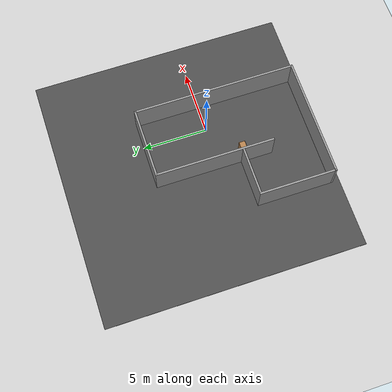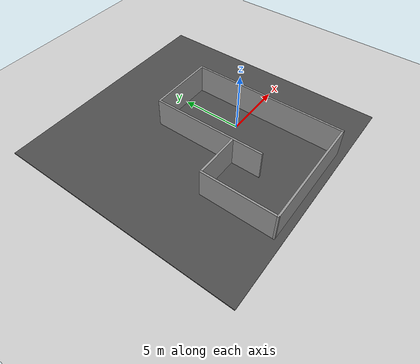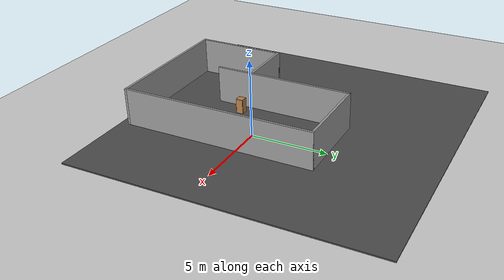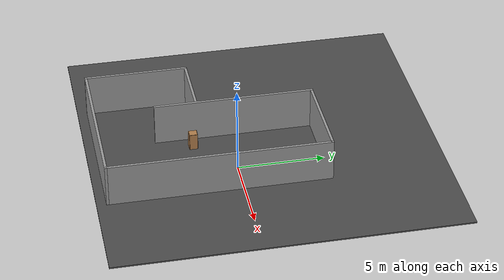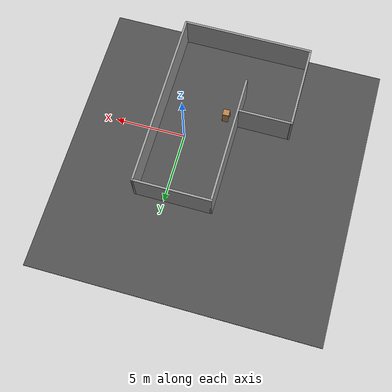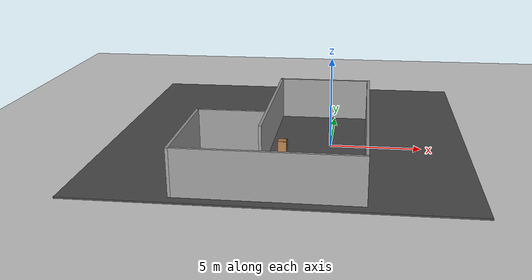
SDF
<sdf version="1.6">
 <world name="default">
  <light name="sun" type="directional">
   <pose>0 0 15 0 -0 0</pose>
   <diffuse>0.8 0.8 0.8 1</diffuse>
   <specular>0.2 0.2 0.2 1</specular>
   <attenuation>
    <range>1000</range>
    <constant>0.9</constant>
    <linear>0.01</linear>
    <quadratic>0.001</quadratic>
   </attenuation>
   <direction>-0.5 0.1 -0.9</direction>
  </light>
  <model name="ground_plane">
   <static>1</static>
   <link name="link">
    <collision name="collision">
     <geometry><plane><normal>0 0 1</normal><size>100 100</size></plane></geometry>
     <surface><friction><ode><mu>100</mu><mu2>50</mu2></ode></friction></surface>
    </collision>
    <visual name="visual">
     <transparency>1</transparency>
     <cast_shadows>0</cast_shadows>
     <geometry><plane><normal>0 0 1</normal><size>100 100</size></plane></geometry>
     <material>
      <script><uri>file://media/materials/scripts/gazebo.material</uri><name>Gazebo/Grey</name></script>
     </material>
    </visual>
   </link>
  </model>
  <gravity>0 0 -9.8</gravity>
  <magnetic_field>6e-06 2.3e-05 -4.2e-05</magnetic_field>
  <atmosphere type="adiabatic"/>
  <physics name="default_physics" default="0" type="ode">
   <max_step_size>0.001</max_step_size>
   <real_time_factor>1</real_time_factor>
   <real_time_update_rate>1000</real_time_update_rate>
  </physics>
  <scene><ambient>0.4 0.4 0.4 1</ambient><background>0.7 0.7 0.7 1</background><shadows>1</shadows></scene>
  <spherical_coordinates>
   <surface_model>EARTH_WGS84</surface_model>
   <latitude_deg>0</latitude_deg>
   <longitude_deg>0</longitude_deg>
   <elevation>0</elevation>
   <heading_deg>0</heading_deg>
  </spherical_coordinates>
  <model name="asphalt_plane">
   <static>1</static>
   <link name="link">
    <collision name="collision"><geometry><box><size>20 20 0.1</size></box></geometry></collision>
    <visual name="visual">
     <cast_shadows>0</cast_shadows>
     <geometry><box><size>20 20 0.1</size></box></geometry>
     <material>
      <script>
       <uri>model://asphalt_plane/materials/scripts</uri>
       <uri>model://asphalt_plane/materials/textures</uri>
       <name>vrc/asphalt</name>
      </script>
     </material>
    </visual>
   </link>
   <pose>-2.45537 1.74261 0 0 -0 0</pose>
  </model>
  <model name="my_world_j">
   <pose>-2.53 -1.33 0 0 -0 0</pose>
   <link name="Wall_0">
    <collision name="Wall_0_Collision">
     <geometry><box><size>9.25 0.15 2.5</size></box></geometry>
     <pose>0 0 1.25 0 -0 0</pose>
    </collision>
    <visual name="Wall_0_Visual">
     <pose>0 0 1.25 0 -0 0</pose>
     <geometry><box><size>9.25 0.15 2.5</size></box></geometry>
     <material>
      <script><uri>file://media/materials/scripts/gazebo.material</uri><name>Gazebo/Grey</name></script>
      <ambient>1 1 1 1</ambient>
     </material>
     <meta><layer>0</layer></meta>
    </visual>
    <pose>-0.8 1.75 0 0 -0 1.5708</pose>
   </link>
   <link name="Wall_1">
    <collision name="Wall_1_Collision">
     <geometry><box><size>5.5 0.15 2.5</size></box></geometry>
     <pose>0 0 1.25 0 -0 0</pose>
    </collision>
    <visual name="Wall_1_Visual">
     <pose>0 0 1.25 0 -0 0</pose>
     <geometry><box><size>5.5 0.15 2.5</size></box></geometry>
     <material>
      <script><uri>file://media/materials/scripts/gazebo.material</uri><name>Gazebo/Grey</name></script>
      <ambient>1 1 1 1</ambient>
     </material>
     <meta><layer>0</layer></meta>
    </visual>
    <pose>1.875 6.3 0 0 -0 0</pose>
   </link>
   <link name="Wall_2">
    <collision name="Wall_2_Collision">
     <geometry><box><size>12.75 0.15 2.5</size></box></geometry>
     <pose>0 0 1.25 0 -0 0</pose>
    </collision>
    <visual name="Wall_2_Visual">
     <pose>0 0 1.25 0 -0 0</pose>
     <geometry><box><size>12.75 0.15 2.5</size></box></geometry>
     <material>
      <script><uri>file://media/materials/scripts/gazebo.material</uri><name>Gazebo/Grey</name></script>
      <ambient>1 1 1 1</ambient>
     </material>
     <meta><layer>0</layer></meta>
    </visual>
    <pose>4.55 0 0 0 0 -1.5708</pose>
   </link>
   <link name="Wall_3">
    <collision name="Wall_3_Collision">
     <geometry><box><size>9.25 0.15 2.5</size></box></geometry>
     <pose>0 0 1.25 0 -0 0</pose>
    </collision>
    <visual name="Wall_3_Visual">
     <pose>0 0 1.25 0 -0 0</pose>
     <geometry><box><size>9.25 0.15 2.5</size></box></geometry>
     <material>
      <script><uri>file://media/materials/scripts/gazebo.material</uri><name>Gazebo/Grey</name></script>
      <ambient>1 1 1 1</ambient>
     </material>
     <meta><layer>0</layer></meta>
    </visual>
    <pose>0 -6.3 0 0 -0 3.14159</pose>
   </link>
   <link name="Wall_4">
    <collision name="Wall_4_Collision">
     <geometry><box><size>6 0.15 2.5</size></box></geometry>
     <pose>0 0 1.25 0 -0 0</pose>
    </collision>
    <visual name="Wall_4_Visual">
     <pose>0 0 1.25 0 -0 0</pose>
     <geometry><box><size>6 0.15 2.5</size></box></geometry>
     <material>
      <script><uri>file://media/materials/scripts/gazebo.material</uri><name>Gazebo/Grey</name></script>
      <ambient>1 1 1 1</ambient>
     </material>
     <meta><layer>0</layer></meta>
    </visual>
    <pose>-4.55 -3.375 0 0 -0 1.5708</pose>
   </link>
   <link name="Wall_5">
    <collision name="Wall_5_Collision">
     <geometry><box><size>3.75 0.15 2.5</size></box></geometry>
     <pose>0 0 1.25 0 -0 0</pose>
    </collision>
    <visual name="Wall_5_Visual">
     <pose>0 0 1.25 0 -0 0</pose>
     <geometry><box><size>3.75 0.15 2.5</size></box></geometry>
     <material>
      <script><uri>file://media/materials/scripts/gazebo.material</uri><name>Gazebo/Grey</name></script>
      <ambient>1 1 1 1</ambient>
     </material>
     <meta><layer>0</layer></meta>
    </visual>
    <pose>-2.75 -0.45 0 0 -0 0</pose>
   </link>
   <static>1</static>
  </model>
  <model name="cabinet">
   <static>1</static>
   <link name="cabinet_bottom_plate">
    <inertial>
     <pose>0 0 -1 0 -0 0</pose>
     <inertia><ixx>2.05</ixx><ixy>0</ixy><ixz>0</ixz><iyy>2.05</iyy><iyz>0</iyz><izz>2.05</izz></inertia>
     <mass>25</mass>
    </inertial>
    <collision name="cabinet_bottom_plate_geom">
     <pose>0 0 0.01 0 -0 0</pose>
     <geometry><box><size>0.45 0.45 0.02</size></box></geometry>
    </collision>
    <visual name="cabinet_bottom_plate_geom_visual">
     <pose>0 0 0.01 0 -0 0</pose>
     <geometry><box><size>0.45 0.45 0.02</size></box></geometry>
     <material>
      <script><uri>file://media/materials/scripts/gazebo.material</uri><name>Gazebo/Wood</name></script>
     </material>
    </visual>
    <collision name="cabinet_bottom_plate_geom_cabinet_back_plate">
     <pose>0.235 0 0.51 0 -0 0</pose>
     <geometry><box><size>0.02 0.45 1.02</size></box></geometry>
    </collision>
    <visual name="cabinet_bottom_plate_geom_cabinet_back_plate_visual">
     <pose>0.235 0 0.51 0 -0 0</pose>
     <geometry><box><size>0.02 0.45 1.02</size></box></geometry>
     <material>
      <script><uri>file://media/materials/scripts/gazebo.material</uri><name>Gazebo/Wood</name></script>
     </material>
    </visual>
    <collision name="cabinet_bottom_plate_geom_cabinet_left_plate">
     <pose>0 0.235 0.51 0 -0 0</pose>
     <geometry><box><size>0.45 0.02 1.02</size></box></geometry>
    </collision>
    <visual name="cabinet_bottom_plate_geom_cabinet_left_plate_visual">
     <pose>0 0.235 0.51 0 -0 0</pose>
     <geometry><box><size>0.45 0.02 1.02</size></box></geometry>
     <material>
      <script><uri>file://media/materials/scripts/gazebo.material</uri><name>Gazebo/Wood</name></script>
     </material>
    </visual>
    <collision name="cabinet_bottom_plate_geom_cabinet_middle_plate">
     <pose>0 0 0.51 0 -0 0</pose>
     <geometry><box><size>0.45 0.45 0.02</size></box></geometry>
    </collision>
    <visual name="cabinet_bottom_plate_geom_cabinet_middle_plate_visual">
     <pose>0 0 0.51 0 -0 0</pose>
     <geometry><box><size>0.45 0.45 0.02</size></box></geometry>
     <material>
      <script><uri>file://media/materials/scripts/gazebo.material</uri><name>Gazebo/Wood</name></script>
     </material>
    </visual>
    <collision name="cabinet_bottom_plate_geom_cabinet_right_plate">
     <pose>0 -0.235 0.51 0 -0 0</pose>
     <geometry><box><size>0.45 0.02 1.02</size></box></geometry>
    </collision>
    <visual name="cabinet_bottom_plate_geom_cabinet_right_plate_visual">
     <pose>0 -0.235 0.51 0 -0 0</pose>
     <geometry><box><size>0.45 0.02 1.02</size></box></geometry>
     <material>
      <script><uri>file://media/materials/scripts/gazebo.material</uri><name>Gazebo/Wood</name></script>
     </material>
    </visual>
    <collision name="cabinet_bottom_plate_geom_cabinet_top_plate">
     <pose>0 0 1.01 0 -0 0</pose>
     <geometry><box><size>0.45 0.45 0.02</size></box></geometry>
    </collision>
    <visual name="cabinet_bottom_plate_geom_cabinet_top_plate_visual">
     <pose>0 0 1.01 0 -0 0</pose>
     <geometry><box><size>0.45 0.45 0.02</size></box></geometry>
     <material>
      <script><uri>file://media/materials/scripts/gazebo.material</uri><name>Gazebo/Wood</name></script>
     </material>
    </visual>
   </link>
   <pose>-2.45665 -2.12923 0 0 -0 0</pose>
  </model>
 </world>
</sdf>
